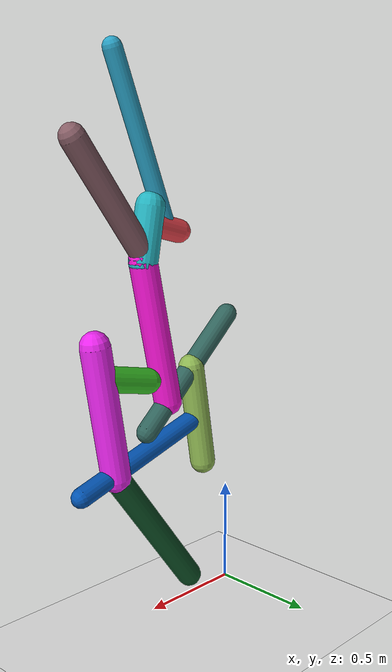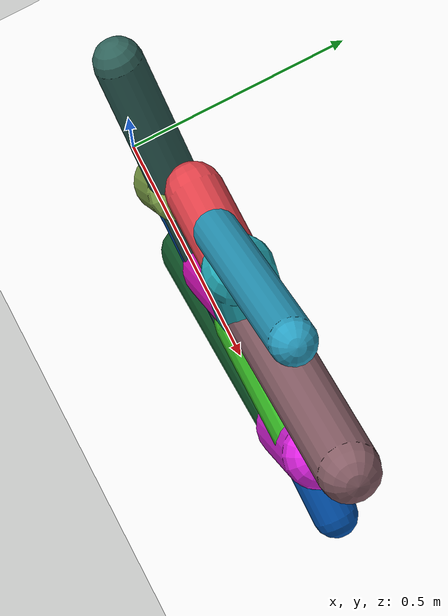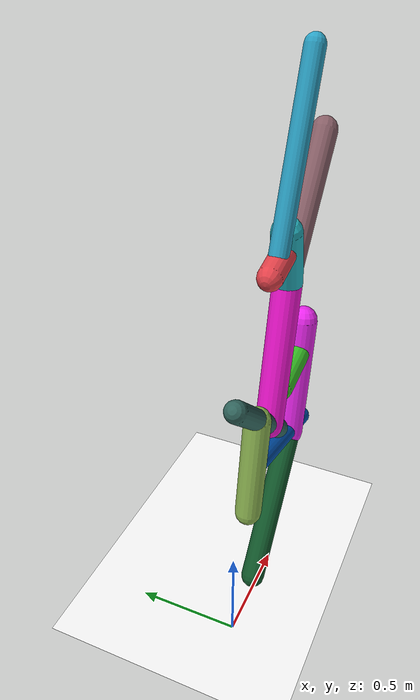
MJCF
<mujoco model="morphology">
  <option timestep="0.01"/>
  <default>
    <default class="/"/>
    <default class="0/"/>
    <default class="0/1/"/>
    <default class="0/1/2/"/>
    <default class="0/1/2/3/"/>
    <default class="0/1/2/3/4/"/>
    <default class="0/1/2/5/"/>
    <default class="0/6/"/>
    <default class="0/6/7/"/>
    <default class="0/6/7/8/"/>
    <default class="0/6/7/8/9/"/>
    <default class="0/6/7/8/9/10/"/>
  </default>
  <asset>
    <texture name="texplane" type="2d" builtin="checker" rgb1="0.10000000000000001 0.20000000000000001 0.29999999999999999" rgb2="0.20000000000000001 0.29999999999999999 0.40000000000000002" width="300" height="300"/>
    <material name="MatPlane" class="/" texture="texplane" texrepeat="20 20" specular="1" shininess="1" reflectance="0.5"/>
  </asset>
  <worldbody>
    <light name="//unnamed_light_0" class="/" directional="true" pos="0 0 1.5" dir="0 0 -1.3" cutoff="100" exponent="1" diffuse="1 1 1" specular="0.10000000000000001 0.10000000000000001 0.10000000000000001"/>
    <geom name="ground" class="/" type="plane" size="15 15 0.5" material="MatPlane" rgba="1 1 1 1"/>
    <site name="body" class="/" size="9.9999999999999995e-07 9.9999999999999995e-07 9.9999999999999995e-07" pos="0 0 1.3722046375274659"/>
    <body pos="0 0 1.3722046375274659" name="0/">
      <joint name="0/rootx/" class="/" type="slide" axis="1 0 0" limited="false" stiffness="0" armature="0" damping="0"/>
      <joint name="0/rootz/" class="/" type="slide" axis="0 0 1" limited="false" stiffness="0" armature="0" damping="0"/>
      <joint name="0/rooty/" class="/" type="hinge" axis="0 1 0" limited="false" stiffness="0" armature="0" damping="0"/>
      <geom name="0/geom" class="0/" type="capsule" contype="1" conaffinity="1" condim="3" size="0.048951603077140707" rgba="0.18879335675975095 0.3878214897737321 0.35720074191780671 1" friction="0.59999999999999998 0.10000000000000001 0.10000000000000001" fromto="0 0 0 0.53026882660260122 0 -0.48047982385201471"/>
      <site name="0/end0" class="0/" size="0.0050000000000000001" pos="0.53026882660260122 0 -0.48047982385201471"/>
      <site name="0/attach1" class="0/" size="9.9999999999999995e-07 9.9999999999999995e-07 9.9999999999999995e-07" pos="0.39784322427606245 0 -0.36048817643232423"/>
      <body pos="0.39784322427606245 0 -0.36048817643232423" name="0/1/">
        <joint name="0/1/joint/" class="0/" type="hinge" axis="0 1 0" limited="true" range="-37.012006027082414 37.012006027082414"/>
        <geom name="0/1/geom" class="0/1/" type="capsule" contype="1" conaffinity="1" condim="3" size="0.064495778299422823" rgba="0.96676040263442775 0.084594608729816279 0.83676991621663388 1" friction="0.59999999999999998 0.10000000000000001 0.10000000000000001" fromto="0 0 0 0.14414286499180218 0 0.66687744795194392"/>
        <site name="0/1/end1" class="0/1/" size="0.0050000000000000001" pos="0.14414286499180218 0 0.66687744795194392"/>
        <site name="0/1/attach2" class="0/1/" size="9.9999999999999995e-07 9.9999999999999995e-07 9.9999999999999995e-07" pos="0.14222011327623327 0 0.65798183069612803"/>
        <body pos="0.14222011327623327 0 0.65798183069612803" name="0/1/2/">
          <joint name="0/1/2/joint/" class="0/1/" type="hinge" axis="0 1 0" limited="true" range="-45.157538144563219 45.157538144563219"/>
          <geom name="0/1/2/geom" class="0/1/2/" type="capsule" contype="1" conaffinity="1" condim="3" size="0.066163854656840659" rgba="0.14608694790742649 0.70350384794169463 0.75349861454267675 1" friction="0.59999999999999998 0.10000000000000001 0.10000000000000001" fromto="0 0 0 -0.045852786029548787 0 0.24113494523044476"/>
          <site name="0/1/2/end2" class="0/1/2/" size="0.0050000000000000001" pos="-0.045852786029548787 0 0.24113494523044476"/>
          <site name="0/1/2/attach3" class="0/1/2/" size="9.9999999999999995e-07 9.9999999999999995e-07 9.9999999999999995e-07" pos="-0.032164392380211487 0 0.16914913283512761"/>
          <body pos="-0.032164392380211487 0 0.16914913283512761" name="0/1/2/3/">
            <geom name="0/1/2/3/geom" class="0/1/2/3/" type="capsule" contype="1" conaffinity="1" condim="3" size="0.053836996956498712" rgba="0.88536054559368127 0.25524052173705791 0.29014442917831484 1" friction="0.59999999999999998 0.10000000000000001 0.10000000000000001" fromto="0 0 0 -0.18490527864694917 0 -0.047157543792089252"/>
            <site name="0/1/2/3/end3" class="0/1/2/3/" size="0.0050000000000000001" pos="-0.18490527864694917 0 -0.047157543792089252"/>
            <site name="0/1/2/3/attach4" class="0/1/2/3/" size="9.9999999999999995e-07 9.9999999999999995e-07 9.9999999999999995e-07" pos="-0.10918821485062734 0 -0.027846949860365521"/>
            <body pos="-0.10918821485062734 0 -0.027846949860365521" name="0/1/2/3/4/">
              <joint name="0/1/2/3/4/joint/" class="0/1/2/3/" type="hinge" axis="0 1 0" limited="true" range="-43.130049938180107 43.130049938180107"/>
              <geom name="0/1/2/3/4/geom" class="0/1/2/3/4/" type="capsule" contype="1" conaffinity="1" condim="3" size="0.042354053735013046" rgba="0.16523368638123781 0.63010666103446722 0.76769373678318864 1" friction="0.59999999999999998 0.10000000000000001 0.10000000000000001" fromto="0 0 0 0.29420989946968912 0 0.74220238097055913"/>
              <site name="0/1/2/3/4/end4" class="0/1/2/3/4/" size="0.0050000000000000001" pos="0.29420989946968912 0 0.74220238097055913"/>
            </body>
          </body>
          <site name="0/1/2/attach5" class="0/1/2/" size="9.9999999999999995e-07 9.9999999999999995e-07 9.9999999999999995e-07" pos="-0.0052448364369534059 0 0.027582039314958631"/>
          <body pos="-0.0052448364369534059 0 0.027582039314958631" name="0/1/2/5/">
            <joint name="0/1/2/5/joint/" class="0/1/2/" type="hinge" axis="0 1 0" limited="true" range="-41.16431797417173 41.16431797417173"/>
            <geom name="0/1/2/5/geom" class="0/1/2/5/" type="capsule" contype="1" conaffinity="1" condim="3" size="0.056934238136881588" rgba="0.53048901633988244 0.36941504128852032 0.40185952485770382 1" friction="0.59999999999999998 0.10000000000000001 0.10000000000000001" fromto="0 0 0 0.37396763847409908 0 0.50184381736570338"/>
            <site name="0/1/2/5/end5" class="0/1/2/5/" size="0.0050000000000000001" pos="0.37396763847409908 0 0.50184381736570338"/>
          </body>
        </body>
      </body>
      <site name="0/attach6" class="0/" size="9.9999999999999995e-07 9.9999999999999995e-07 9.9999999999999995e-07" pos="0.24473253411549575 0 -0.22175364453546353"/>
      <body pos="0.24473253411549575 0 -0.22175364453546353" name="0/6/">
        <joint name="0/6/joint/" class="0/" type="hinge" axis="0 1 0" limited="true" range="-68.925121391563351 68.925121391563351"/>
        <geom name="0/6/geom" class="0/6/" type="capsule" contype="1" conaffinity="1" condim="3" size="0.060812325880595416" rgba="0.55743553483404162 0.71405776981177072 0.32363626560946779 1" friction="0.59999999999999998 0.10000000000000001 0.10000000000000001" fromto="0 0 0 -0.079311094022332385 0 -0.48447319620571949"/>
        <site name="0/6/end6" class="0/6/" size="0.0050000000000000001" pos="-0.079311094022332385 0 -0.48447319620571949"/>
        <site name="0/6/attach7" class="0/6/" size="9.9999999999999995e-07 9.9999999999999995e-07 9.9999999999999995e-07" pos="-0.040963661028010204 0 -0.25022723530884095"/>
        <body pos="-0.040963661028010204 0 -0.25022723530884095" name="0/6/7/">
          <joint name="0/6/7/joint/" class="0/6/" type="hinge" axis="0 1 0" limited="true" range="-31.823287573044531 31.823287573044531"/>
          <geom name="0/6/7/geom" class="0/6/7/" type="capsule" contype="1" conaffinity="1" condim="3" size="0.045935986087259489" rgba="0.0082233905233796145 0.32776513227939685 0.69612581455288058 1" friction="0.59999999999999998 0.10000000000000001 0.10000000000000001" fromto="0 0 0 0.71108249971013615 0 -0.21273152968515285"/>
          <site name="0/6/7/end7" class="0/6/7/" size="0.0050000000000000001" pos="0.71108249971013615 0 -0.21273152968515285"/>
          <site name="0/6/7/attach8" class="0/6/7/" size="9.9999999999999995e-07 9.9999999999999995e-07 9.9999999999999995e-07" pos="0.5267791637764051 0 -0.15759428387297003"/>
          <body pos="0.5267791637764051 0 -0.15759428387297003" name="0/6/7/8/">
            <joint name="0/6/7/8/joint/" class="0/6/7/" type="hinge" axis="0 1 0" limited="true" range="-38.245632584751654 38.245632584751654"/>
            <geom name="0/6/7/8/geom" class="0/6/7/8/" type="capsule" contype="1" conaffinity="1" condim="3" size="0.058308080654810898" rgba="0.063261817079738769 0.33756682890601075 0.16289010392527437 1" friction="0.59999999999999998 0.10000000000000001 0.10000000000000001" fromto="0 0 0 -0.4691557817270734 0 -0.64262942918835075"/>
            <site name="0/6/7/8/end8" class="0/6/7/8/" size="0.0050000000000000001" pos="-0.4691557817270734 0 -0.64262942918835075"/>
            <site name="0/6/7/8/attach9" class="0/6/7/8/" size="9.9999999999999995e-07 9.9999999999999995e-07 9.9999999999999995e-07" pos="-0.012794930824692338 0 -0.017525946418283232"/>
            <body pos="-0.012794930824692338 0 -0.017525946418283232" name="0/6/7/8/9/">
              <joint name="0/6/7/8/9/joint/" class="0/6/7/8/" type="hinge" axis="0 1 0" limited="true" range="-54.215954011874658 54.215954011874658"/>
              <geom name="0/6/7/8/9/geom" class="0/6/7/8/9/" type="capsule" contype="1" conaffinity="1" condim="3" size="0.067869267914914932" rgba="0.91946044471646848 0.14929906971849727 0.93128189550897622 1" friction="0.59999999999999998 0.10000000000000001 0.10000000000000001" fromto="0 0 0 0.10234286338626153 0 0.61241347442814398"/>
              <site name="0/6/7/8/9/end9" class="0/6/7/8/9/" size="0.0050000000000000001" pos="0.10234286338626153 0 0.61241347442814398"/>
              <site name="0/6/7/8/9/attach10" class="0/6/7/8/9/" size="9.9999999999999995e-07 9.9999999999999995e-07 9.9999999999999995e-07" pos="0.077907085462842515 0 0.46619126446362924"/>
              <body pos="0.077907085462842515 0 0.46619126446362924" name="0/6/7/8/9/10/">
                <joint name="0/6/7/8/9/10/joint/" class="0/6/7/8/9/" type="hinge" axis="0 1 0" limited="true" range="-69.979036285247773 69.979036285247773"/>
                <geom name="0/6/7/8/9/10/geom" class="0/6/7/8/9/10/" type="capsule" contype="1" conaffinity="1" condim="3" size="0.059406464043904691" rgba="0.22109435801096988 0.74669638008667005 0.15093329271122136 1" friction="0.59999999999999998 0.10000000000000001 0.10000000000000001" fromto="0 0 0 -0.27499976515019325 0 -0.05856419287469028"/>
                <site name="0/6/7/8/9/10/end10" class="0/6/7/8/9/10/" size="0.0050000000000000001" pos="-0.27499976515019325 0 -0.05856419287469028"/>
              </body>
            </body>
          </body>
        </body>
      </body>
      <camera name="0/side" class="0/" mode="trackcom" pos="0.40000000000000002 -4 0.20000000000000001" quat="0.70699999999999996 0.70699999999999996 0 0"/>
    </body>
  </worldbody>
  <actuator>
    <motor name="0/1/motor" class="0/1/" ctrllimited="true" ctrlrange="-1 1" gear="51" joint="0/1/joint/"/>
    <motor name="0/1/2/motor" class="0/1/2/" ctrllimited="true" ctrlrange="-1 1" gear="50" joint="0/1/2/joint/"/>
    <motor name="0/1/2/3/4/motor" class="0/1/2/3/4/" ctrllimited="true" ctrlrange="-1 1" gear="61" joint="0/1/2/3/4/joint/"/>
    <motor name="0/1/2/5/motor" class="0/1/2/5/" ctrllimited="true" ctrlrange="-1 1" gear="60" joint="0/1/2/5/joint/"/>
    <motor name="0/6/motor" class="0/6/" ctrllimited="true" ctrlrange="-1 1" gear="87" joint="0/6/joint/"/>
    <motor name="0/6/7/motor" class="0/6/7/" ctrllimited="true" ctrlrange="-1 1" gear="73" joint="0/6/7/joint/"/>
    <motor name="0/6/7/8/motor" class="0/6/7/8/" ctrllimited="true" ctrlrange="-1 1" gear="66" joint="0/6/7/8/joint/"/>
    <motor name="0/6/7/8/9/motor" class="0/6/7/8/9/" ctrllimited="true" ctrlrange="-1 1" gear="86" joint="0/6/7/8/9/joint/"/>
    <motor name="0/6/7/8/9/10/motor" class="0/6/7/8/9/10/" ctrllimited="true" ctrlrange="-1 1" gear="50" joint="0/6/7/8/9/10/joint/"/>
  </actuator>
  <sensor>
    <subtreelinvel name="velocity" body="0/"/>
  </sensor>
</mujoco>
